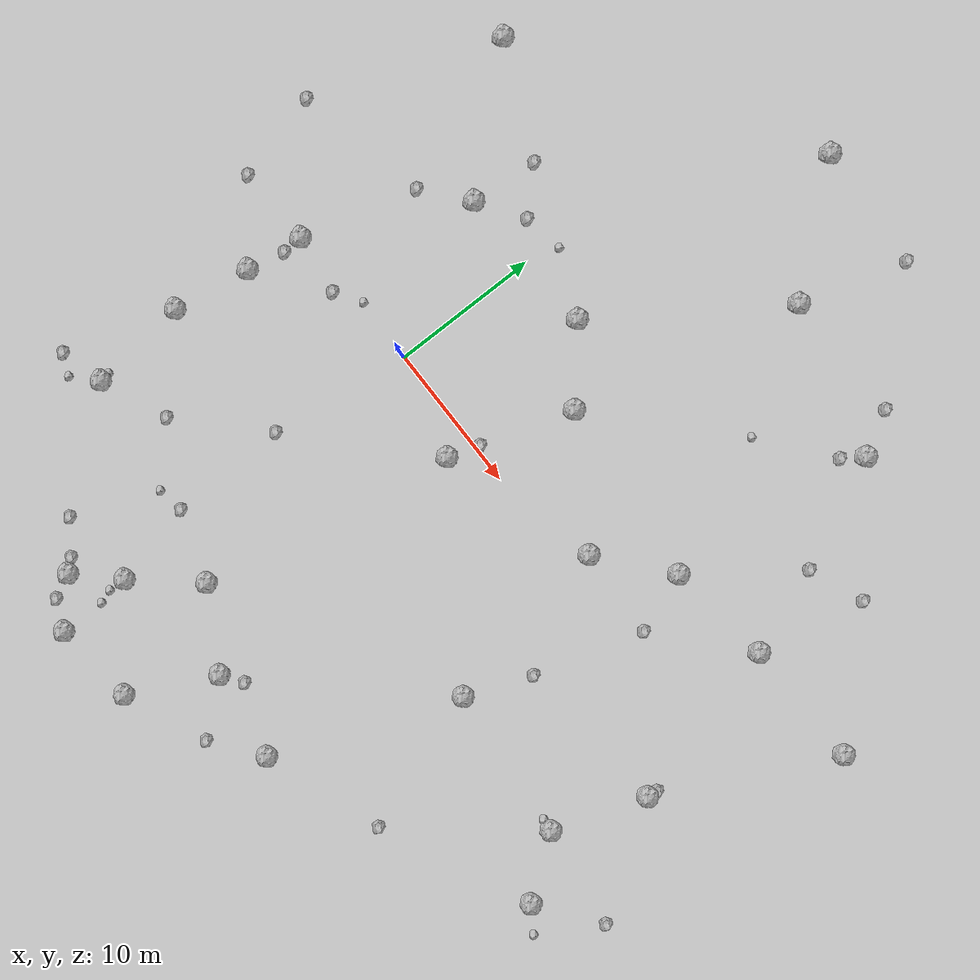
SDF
<sdf version="1.6">
 <world name="default">
  <include><uri>model://custom_ground</uri></include>
  <include><uri>model://sun</uri></include>
  <model name="rock1_0_0">
   <include><uri>model://rock1</uri><pose>-11.503411078473125 -9.660300492870213 0.5 0 0 0</pose></include>
  </model>
  <model name="rock1_0_1">
   <include><uri>model://rock1</uri><pose>6.808349927093094 -1.7704275221813823 0.5 0 0 0</pose></include>
  </model>
  <model name="rock1_0_2">
   <include><uri>model://rock1</uri><pose>-10.134170801342757 -0.4737587298295587 0.5 0 0 0</pose></include>
  </model>
  <model name="rock1_0_3">
   <include><uri>model://rock1</uri><pose>17.401818476116453 1.543593528536956 0.5 0 0 0</pose></include>
  </model>
  <model name="rock1_0_4">
   <include><uri>model://rock1</uri><pose>3.5994806406390687 -18.9408677183257 0.5 0 0 0</pose></include>
  </model>
  <model name="rock1_0_5">
   <include><uri>model://rock1</uri><pose>6.677490581675897 29.695834067963858 0.5 0 0 0</pose></include>
  </model>
  <model name="rock1_0_6">
   <include><uri>model://rock1</uri><pose>9.474659829688278 6.565295986912531 0.5 0 0 0</pose></include>
  </model>
  <model name="rock1_0_7">
   <include><uri>model://rock1</uri><pose>0.3806872126282492 -28.086174527003447 0.5 0 0 0</pose></include>
  </model>
  <model name="rock1_0_8">
   <include><uri>model://rock1</uri><pose>-12.239818995272461 17.769852893372594 0.5 0 0 0</pose></include>
  </model>
  <model name="rock1_0_9">
   <include><uri>model://rock1</uri><pose>5.008054746975777 10.317719458864111 0.5 0 0 0</pose></include>
  </model>
  <model name="rock1_0_10">
   <include><uri>model://rock1</uri><pose>21.9578537041507 5.310865710735911 0.5 0 0 0</pose></include>
  </model>
  <model name="rock1_0_11">
   <include><uri>model://rock1</uri><pose>5.983462245148534 -27.553769954747914 0.5 0 0 0</pose></include>
  </model>
  <model name="rock1_0_12">
   <include><uri>model://rock1</uri><pose>31.984097426111923 -5.098819459210745 0.5 0 0 0</pose></include>
  </model>
  <model name="rock1_0_13">
   <include><uri>model://rock1</uri><pose>23.454351879285824 19.47904448850656 0.5 0 0 0</pose></include>
  </model>
  <model name="rock1_0_14">
   <include><uri>model://rock1</uri><pose>13.03617988805356 22.158231088864447 0.5 0 0 0</pose></include>
  </model>
  <model name="rock1_0_15">
   <include><uri>model://rock1</uri><pose>29.124516692812108 6.280925601246665 0.5 0 0 0</pose></include>
  </model>
  <model name="rock1_0_16">
   <include><uri>model://rock1</uri><pose>-10.62726112887405 -4.4197847797269745 0.5 0 0 0</pose></include>
  </model>
  <model name="rock1_0_17">
   <include><uri>model://rock1</uri><pose>0.15618251322850085 -22.95410317538272 0.5 0 0 0</pose></include>
  </model>
  <model name="rock1_0_18">
   <include><uri>model://rock1</uri><pose>8.774329427639827 -21.936178321890896 0.5 0 0 0</pose></include>
  </model>
  <model name="rock1_0_19">
   <include><uri>model://rock1</uri><pose>-2.373637926613636 -25.588514092489792 0.5 0 0 0</pose></include>
  </model>
  <model name="rock1_0_20">
   <include><uri>model://rock1</uri><pose>-10.829205733613982 -16.27119311059975 0.5 0 0 0</pose></include>
  </model>
  <model name="rock1_0_21">
   <include><uri>model://rock1</uri><pose>-5.08818100552007 9.76590193204099 0.5 0 0 0</pose></include>
  </model>
  <model name="rock1_0_22">
   <include><uri>model://rock1</uri><pose>32.77220983545316 -15.253588261637447 0.5 0 0 0</pose></include>
  </model>
  <model name="rock1_0_23">
   <include><uri>model://rock1</uri><pose>37.663647092061204 6.499365665041921 0.5 0 0 0</pose></include>
  </model>
  <model name="rock1_0_24">
   <include><uri>model://rock1</uri><pose>14.789605048984896 -22.777207140836314 0.5 0 0 0</pose></include>
  </model>
  <model name="rock1_0_25">
   <include><uri>model://rock1</uri><pose>19.57527410946119 -10.459441940534056 0.5 0 0 0</pose></include>
  </model>
  <model name="rock1_0_26">
   <include><uri>model://rock1</uri><pose>29.857244306953632 -11.345402981057585 0.5 0 0 0</pose></include>
  </model>
  <model name="rock2_0_0">
   <include><uri>model://rock2</uri><pose>7.506592603519117 0.3789382166240145 0.3 0 0 0</pose></include>
  </model>
  <model name="rock2_0_1">
   <include><uri>model://rock2</uri><pose>-1.3073763337491648 -9.467474156459247 0.3 0 0 0</pose></include>
  </model>
  <model name="rock2_0_2">
   <include><uri>model://rock2</uri><pose>11.574661464621709 -25.25878786911317 0.3 0 0 0</pose></include>
  </model>
  <model name="rock2_0_3">
   <include><uri>model://rock2</uri><pose>-15.474965974398323 -0.6377787677178688 0.3 0 0 0</pose></include>
  </model>
  <model name="rock2_0_4">
   <include><uri>model://rock2</uri><pose>36.80788637197735 -12.299611934888066 0.3 0 0 0</pose></include>
  </model>
  <model name="rock2_0_5">
   <include><uri>model://rock2</uri><pose>-2.1293451896396967 11.793655478348136 0.3 0 0 0</pose></include>
  </model>
  <model name="rock2_0_6">
   <include><uri>model://rock2</uri><pose>15.148885677630915 29.355349583254032 0.3 0 0 0</pose></include>
  </model>
  <model name="rock2_0_7">
   <include><uri>model://rock2</uri><pose>-4.709841804030148 14.391380273555193 0.3 0 0 0</pose></include>
  </model>
  <model name="rock2_0_8">
   <include><uri>model://rock2</uri><pose>-5.213226914021675 -23.292225696776327 0.3 0 0 0</pose></include>
  </model>
  <model name="rock2_0_9">
   <include><uri>model://rock2</uri><pose>26.932148505989055 12.139084874442446 0.3 0 0 0</pose></include>
  </model>
  <model name="rock2_0_10">
   <include><uri>model://rock2</uri><pose>10.160772608531254 -21.01878023422382 0.3 0 0 0</pose></include>
  </model>
  <model name="rock2_0_11">
   <include><uri>model://rock2</uri><pose>-10.10794693248496 -1.85438342412915 0.3 0 0 0</pose></include>
  </model>
  <model name="rock2_0_12">
   <include><uri>model://rock2</uri><pose>-6.402508650600485 -14.419589471392309 0.3 0 0 0</pose></include>
  </model>
  <model name="rock2_0_13">
   <include><uri>model://rock2</uri><pose>-17.017426957287235 5.3815782254709745 0.3 0 0 0</pose></include>
  </model>
  <model name="rock2_0_14">
   <include><uri>model://rock2</uri><pose>32.09095685511008 -4.413528821215959 0.3 0 0 0</pose></include>
  </model>
  <model name="rock2_0_15">
   <include><uri>model://rock2</uri><pose>-13.819009661945172 -17.09812893178816 0.3 0 0 0</pose></include>
  </model>
  <model name="rock2_0_16">
   <include><uri>model://rock2</uri><pose>23.458522960821988 1.2799180067881046 0.3 0 0 0</pose></include>
  </model>
  <model name="rock2_0_17">
   <include><uri>model://rock2</uri><pose>22.49868650994523 18.119978991949694 0.3 0 0 0</pose></include>
  </model>
  <model name="rock2_0_18">
   <include><uri>model://rock2</uri><pose>22.828435195400147 -19.96755013961594 0.3 0 0 0</pose></include>
  </model>
  <model name="rock2_0_19">
   <include><uri>model://rock2</uri><pose>-3.1056618990476856 -24.839360749465882 0.3 0 0 0</pose></include>
  </model>
  <model name="rock2_0_20">
   <include><uri>model://rock2</uri><pose>21.296962061469102 -6.0602880825055365 0.3 0 0 0</pose></include>
  </model>
  <model name="rock2_0_21">
   <include><uri>model://rock2</uri><pose>30.654215134548714 13.616436668726308 0.3 0 0 0</pose></include>
  </model>
  <model name="rock2_0_22">
   <include><uri>model://rock2</uri><pose>-1.1668534136644872 -17.371006051542214 0.3 0 0 0</pose></include>
  </model>
  <model name="rock2_0_23">
   <include><uri>model://rock2</uri><pose>-6.162815046459876 -0.9952128229895436 0.3 0 0 0</pose></include>
  </model>
  <model name="rock2_0_24">
   <include><uri>model://rock2</uri><pose>-8.046582216253086 7.375637597247888 0.3 0 0 0</pose></include>
  </model>
  <model name="rock2_0_25">
   <include><uri>model://rock2</uri><pose>21.82583405031025 22.370557802401187 0.3 0 0 0</pose></include>
  </model>
  <model name="rock2_0_26">
   <include><uri>model://rock2</uri><pose>-1.6056949748204659 -27.221956590350786 0.3 0 0 0</pose></include>
  </model>
  <model name="rock3_0_0">
   <include><uri>model://rock3</uri><pose>34.470726801782305 -16.437246407982627 0.2 0 0 0</pose></include>
  </model>
  <model name="rock3_0_1">
   <include><uri>model://rock3</uri><pose>-10.980638690125762 -15.6598244857679 0.2 0 0 0</pose></include>
  </model>
  <model name="rock3_0_2">
   <include><uri>model://rock3</uri><pose>17.902852508132256 14.470614232793196 0.2 0 0 0</pose></include>
  </model>
  <model name="rock3_0_3">
   <include><uri>model://rock3</uri><pose>-2.972319277470014 -17.699764294786107 0.2 0 0 0</pose></include>
  </model>
  <model name="rock3_0_4">
   <include><uri>model://rock3</uri><pose>-4.423579276449026 0.12311385302733768 0.2 0 0 0</pose></include>
  </model>
  <model name="rock3_0_5">
   <include><uri>model://rock3</uri><pose>-12.424084793233735 -17.811882213629545 0.2 0 0 0</pose></include>
  </model>
  <model name="rock3_0_6">
   <include><uri>model://rock3</uri><pose>29.016789925448343 -11.337628120696394 0.2 0 0 0</pose></include>
  </model>
  <model name="rock3_0_7">
   <include><uri>model://rock3</uri><pose>0.08573101645805181 -24.243018043543874 0.2 0 0 0</pose></include>
  </model>
  <model name="rock3_0_8">
   <include><uri>model://rock3</uri><pose>0.3796125201164031 -25.163173117195466 0.2 0 0 0</pose></include>
  </model>
  <model name="rock3_0_9">
   <include><uri>model://rock3</uri><pose>0.6067639971124414 12.24506692824297 0.2 0 0 0</pose></include>
  </model>
  <model name="rock3_0_10">
   <include><uri>model://rock3</uri><pose>-1.5354512920490464 -27.284853155469584 0.2 0 0 0</pose></include>
  </model>
 </world>
</sdf>
